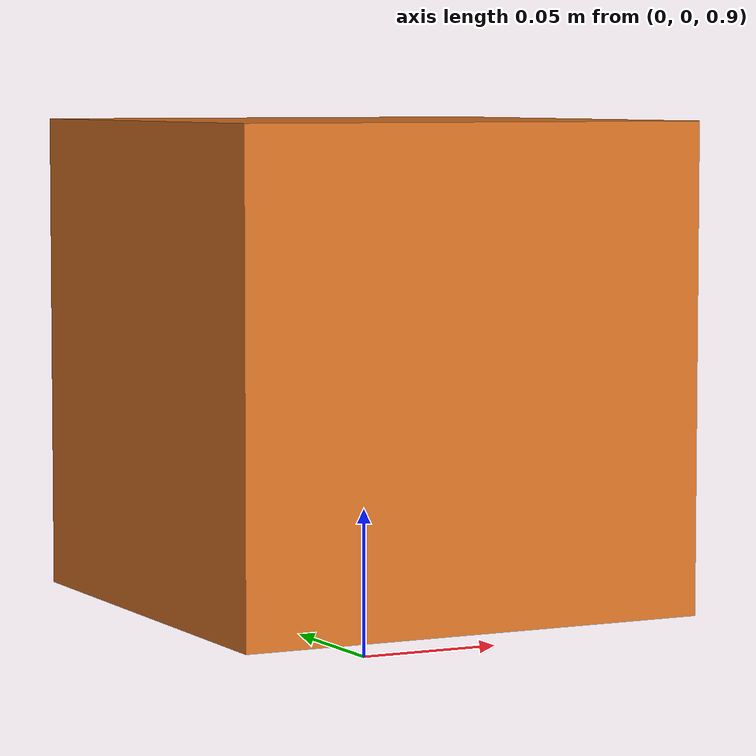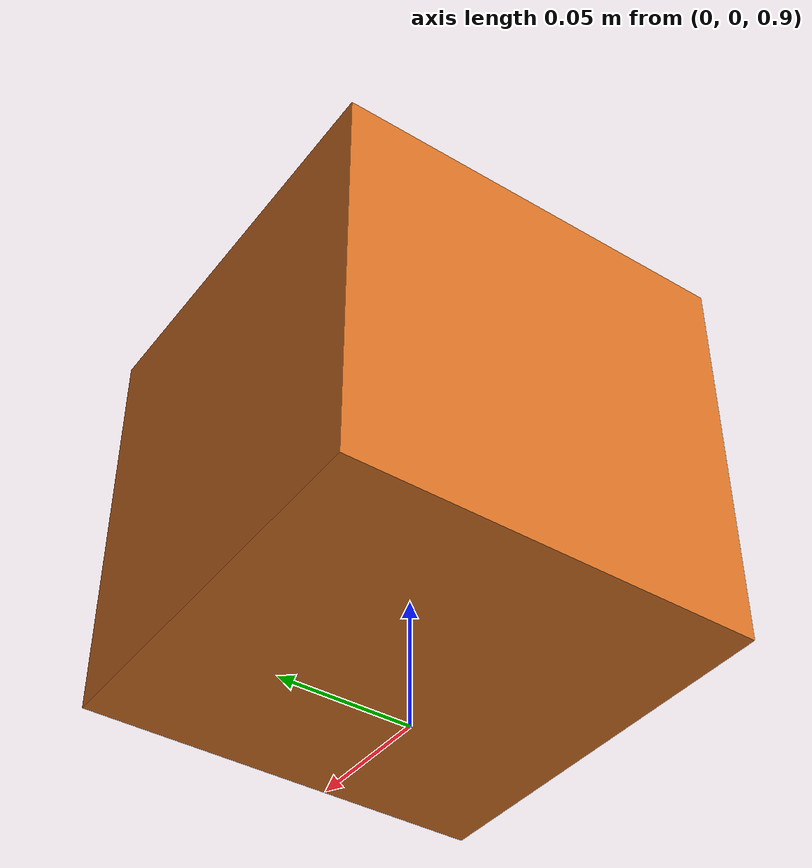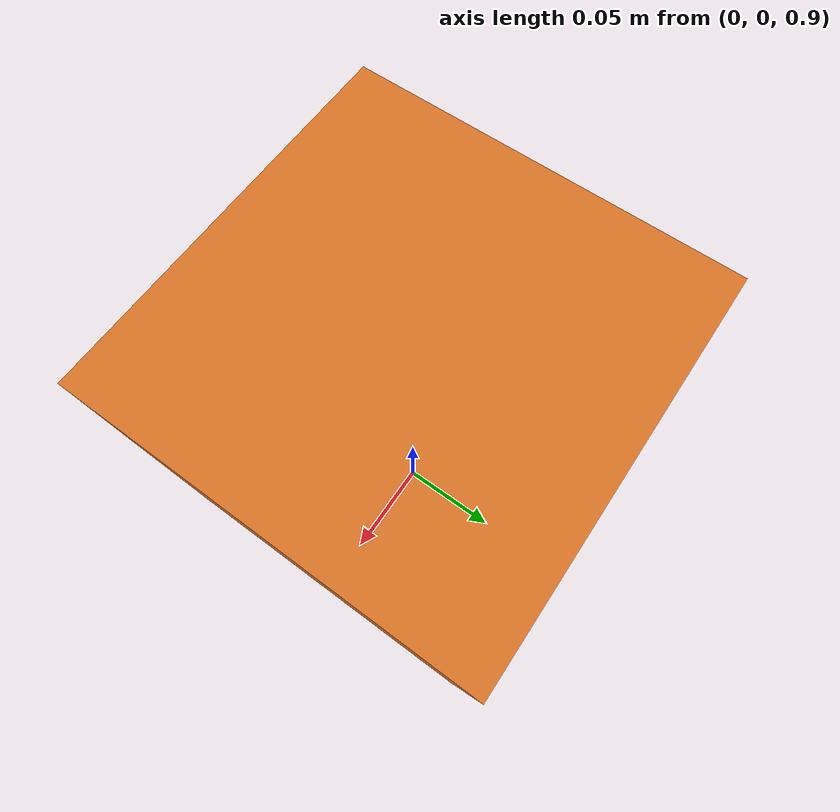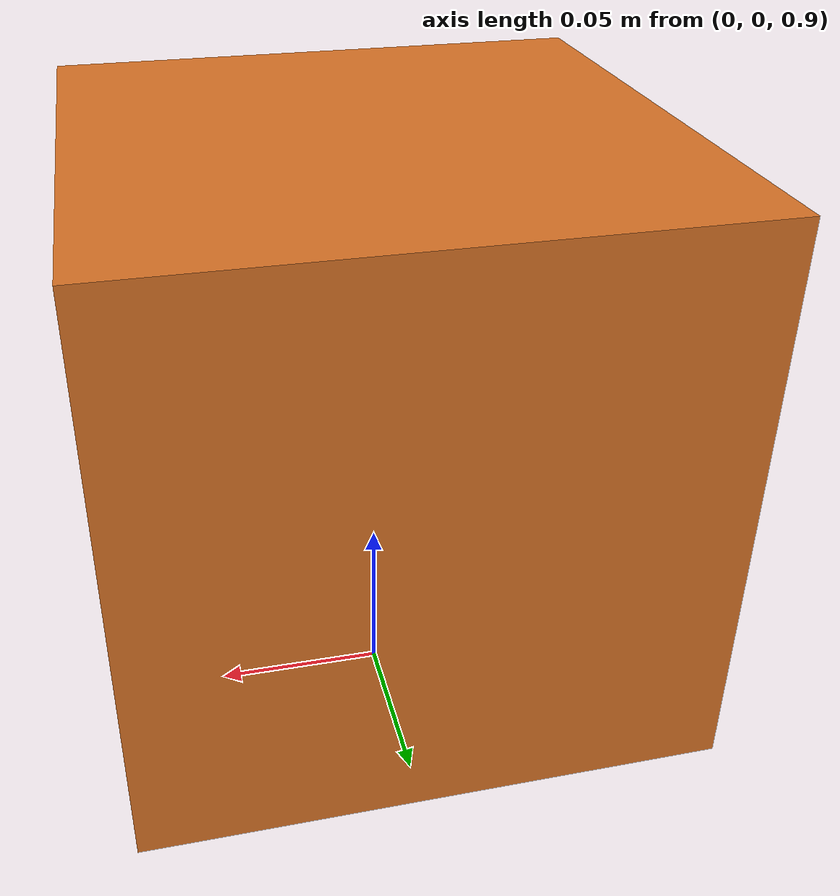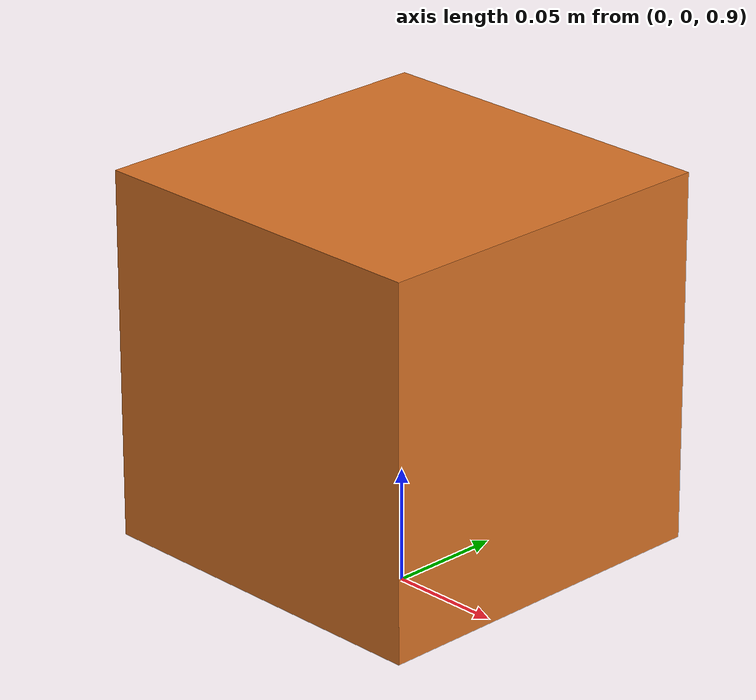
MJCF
<mujoco model="drag-target">
  <compiler angle="radian"/>
  <option gravity="0 0 0" timestep="0.002" integrator="RK4"/>

  <worldbody>
    <geom type="plane" size="5 5 0.1" rgba="0.3 0.3 0.3 1" contype="0" conaffinity="0"/>

    <body name="target" mocap="true" pos="0 0 1">
      <geom name="target_geom" type="sphere" size="0.08" mass="0.1"
            rgba="0.2 0.8 0.3 0.4" contype="0" conaffinity="0"/>
    </body>

    <body name="follower" pos="0 0 1">
      <freejoint name="free"/>
      <geom name="follower_geom" type="box" size="0.08 0.08 0.08" mass="1.0"
            rgba="0.85 0.45 0.15 1"/>
    </body>
  </worldbody>

  <equality>
    <weld body1="follower" body2="target" solref="0.02 1.0"/>
  </equality>
</mujoco>
